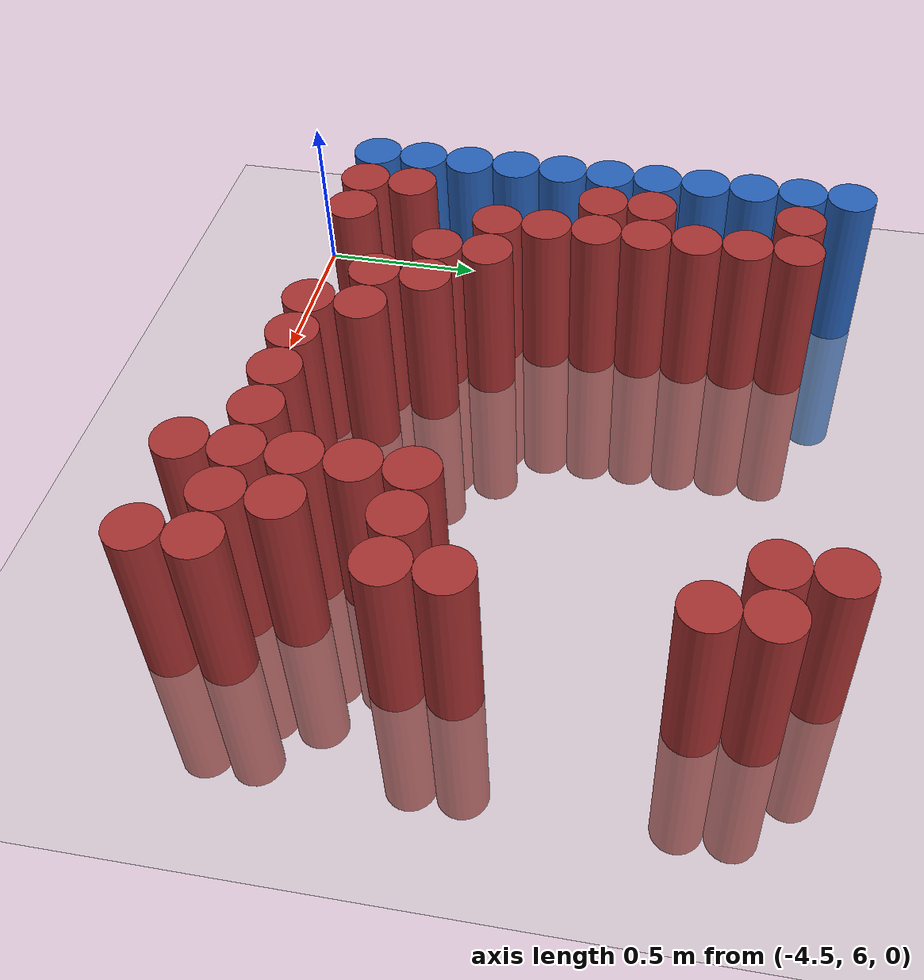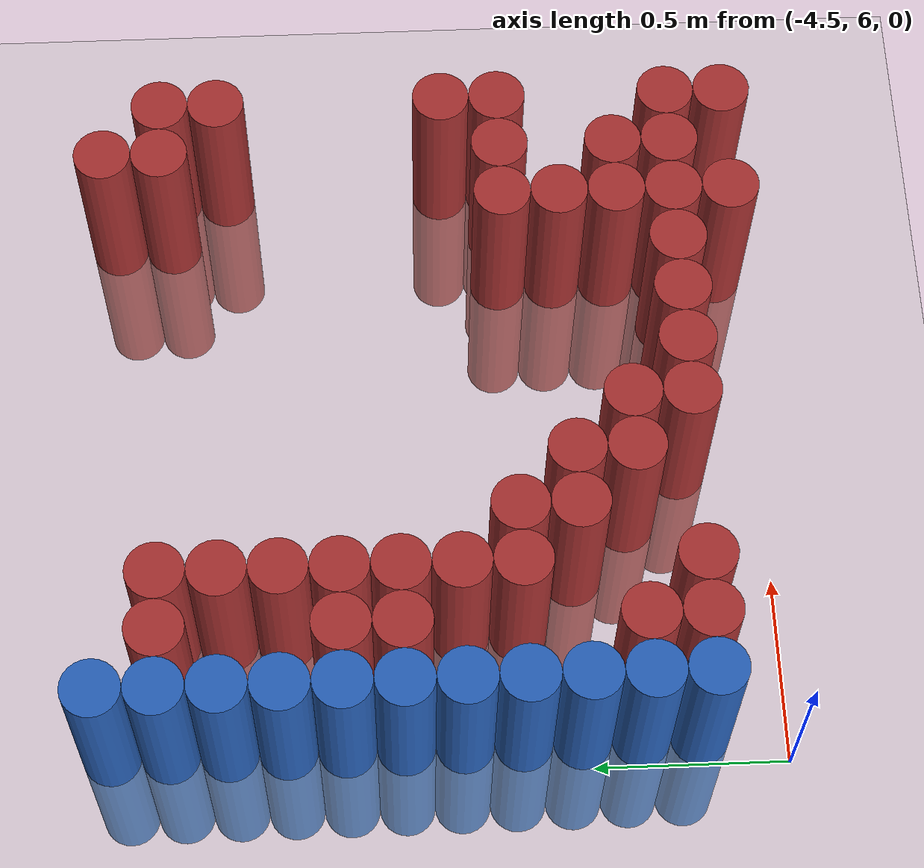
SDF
<sdf version="1.6">
 <world name="default">
  <model name="ground_plane">
   <static>1</static>
   <link name="link">
    <collision name="collision">
     <geometry><plane><normal>0 0 1</normal><size>100 100</size></plane></geometry>
     <surface><friction><ode><mu>100</mu><mu2>50</mu2></ode></friction></surface>
    </collision>
    <visual name="visual">
     <cast_shadows>0</cast_shadows>
     <geometry><plane><normal>0 0 1</normal><size>100 100</size></plane></geometry>
     <material>
      <script><uri>file://media/materials/scripts/gazebo.material</uri><name>Gazebo/Grey</name></script>
     </material>
    </visual>
   </link>
  </model>
  <model name="unit_cylinder_103">
   <static>1</static>
   <pose>-4.425000 6.225000 0.000000 0.000000 0.000000 0.000000</pose>
   <link name="link">
    <inertial>
     <mass>1</mass>
     <inertia><ixx>0.145833</ixx><ixy>0</ixy><ixz>0</ixz><iyy>0.145833</iyy><iyz>0</iyz><izz>0.125</izz></inertia>
    </inertial>
    <collision name="collision">
     <geometry><cylinder><radius>0.075000</radius><length>1</length></cylinder></geometry>
    </collision>
    <visual name="visual">
     <geometry><cylinder><radius>0.075000</radius><length>1</length></cylinder></geometry>
     <material>
      <ambient>0.152000 0.379000 0.720000 1</ambient>
      <diffuse>0.152000 0.379000 0.720000 1</diffuse>
     </material>
     <material>
      <script><name>Gazebo/Grey</name><uri>file://media/materials/scripts/gazebo.material</uri></script>
     </material>
    </visual>
   </link>
  </model>
  <model name="unit_cylinder_104">
   <static>1</static>
   <pose>-4.425000 6.375000 0.000000 0.000000 0.000000 0.000000</pose>
   <link name="link">
    <inertial>
     <mass>1</mass>
     <inertia><ixx>0.145833</ixx><ixy>0</ixy><ixz>0</ixz><iyy>0.145833</iyy><iyz>0</iyz><izz>0.125</izz></inertia>
    </inertial>
    <collision name="collision">
     <geometry><cylinder><radius>0.075000</radius><length>1</length></cylinder></geometry>
    </collision>
    <visual name="visual">
     <geometry><cylinder><radius>0.075000</radius><length>1</length></cylinder></geometry>
     <material>
      <ambient>0.152000 0.379000 0.720000 1</ambient>
      <diffuse>0.152000 0.379000 0.720000 1</diffuse>
     </material>
     <material>
      <script><name>Gazebo/Grey</name><uri>file://media/materials/scripts/gazebo.material</uri></script>
     </material>
    </visual>
   </link>
  </model>
  <model name="unit_cylinder_105">
   <static>1</static>
   <pose>-4.425000 6.525000 0.000000 0.000000 0.000000 0.000000</pose>
   <link name="link">
    <inertial>
     <mass>1</mass>
     <inertia><ixx>0.145833</ixx><ixy>0</ixy><ixz>0</ixz><iyy>0.145833</iyy><iyz>0</iyz><izz>0.125</izz></inertia>
    </inertial>
    <collision name="collision">
     <geometry><cylinder><radius>0.075000</radius><length>1</length></cylinder></geometry>
    </collision>
    <visual name="visual">
     <geometry><cylinder><radius>0.075000</radius><length>1</length></cylinder></geometry>
     <material>
      <ambient>0.152000 0.379000 0.720000 1</ambient>
      <diffuse>0.152000 0.379000 0.720000 1</diffuse>
     </material>
     <material>
      <script><name>Gazebo/Grey</name><uri>file://media/materials/scripts/gazebo.material</uri></script>
     </material>
    </visual>
   </link>
  </model>
  <model name="unit_cylinder_106">
   <static>1</static>
   <pose>-4.425000 6.675000 0.000000 0.000000 0.000000 0.000000</pose>
   <link name="link">
    <inertial>
     <mass>1</mass>
     <inertia><ixx>0.145833</ixx><ixy>0</ixy><ixz>0</ixz><iyy>0.145833</iyy><iyz>0</iyz><izz>0.125</izz></inertia>
    </inertial>
    <collision name="collision">
     <geometry><cylinder><radius>0.075000</radius><length>1</length></cylinder></geometry>
    </collision>
    <visual name="visual">
     <geometry><cylinder><radius>0.075000</radius><length>1</length></cylinder></geometry>
     <material>
      <ambient>0.152000 0.379000 0.720000 1</ambient>
      <diffuse>0.152000 0.379000 0.720000 1</diffuse>
     </material>
     <material>
      <script><name>Gazebo/Grey</name><uri>file://media/materials/scripts/gazebo.material</uri></script>
     </material>
    </visual>
   </link>
  </model>
  <model name="unit_cylinder_107">
   <static>1</static>
   <pose>-4.425000 6.825000 0.000000 0.000000 0.000000 0.000000</pose>
   <link name="link">
    <inertial>
     <mass>1</mass>
     <inertia><ixx>0.145833</ixx><ixy>0</ixy><ixz>0</ixz><iyy>0.145833</iyy><iyz>0</iyz><izz>0.125</izz></inertia>
    </inertial>
    <collision name="collision">
     <geometry><cylinder><radius>0.075000</radius><length>1</length></cylinder></geometry>
    </collision>
    <visual name="visual">
     <geometry><cylinder><radius>0.075000</radius><length>1</length></cylinder></geometry>
     <material>
      <ambient>0.152000 0.379000 0.720000 1</ambient>
      <diffuse>0.152000 0.379000 0.720000 1</diffuse>
     </material>
     <material>
      <script><name>Gazebo/Grey</name><uri>file://media/materials/scripts/gazebo.material</uri></script>
     </material>
    </visual>
   </link>
  </model>
  <model name="unit_cylinder_108">
   <static>1</static>
   <pose>-4.425000 6.975000 0.000000 0.000000 0.000000 0.000000</pose>
   <link name="link">
    <inertial>
     <mass>1</mass>
     <inertia><ixx>0.145833</ixx><ixy>0</ixy><ixz>0</ixz><iyy>0.145833</iyy><iyz>0</iyz><izz>0.125</izz></inertia>
    </inertial>
    <collision name="collision">
     <geometry><cylinder><radius>0.075000</radius><length>1</length></cylinder></geometry>
    </collision>
    <visual name="visual">
     <geometry><cylinder><radius>0.075000</radius><length>1</length></cylinder></geometry>
     <material>
      <ambient>0.152000 0.379000 0.720000 1</ambient>
      <diffuse>0.152000 0.379000 0.720000 1</diffuse>
     </material>
     <material>
      <script><name>Gazebo/Grey</name><uri>file://media/materials/scripts/gazebo.material</uri></script>
     </material>
    </visual>
   </link>
  </model>
  <model name="unit_cylinder_109">
   <static>1</static>
   <pose>-4.425000 7.125000 0.000000 0.000000 0.000000 0.000000</pose>
   <link name="link">
    <inertial>
     <mass>1</mass>
     <inertia><ixx>0.145833</ixx><ixy>0</ixy><ixz>0</ixz><iyy>0.145833</iyy><iyz>0</iyz><izz>0.125</izz></inertia>
    </inertial>
    <collision name="collision">
     <geometry><cylinder><radius>0.075000</radius><length>1</length></cylinder></geometry>
    </collision>
    <visual name="visual">
     <geometry><cylinder><radius>0.075000</radius><length>1</length></cylinder></geometry>
     <material>
      <ambient>0.152000 0.379000 0.720000 1</ambient>
      <diffuse>0.152000 0.379000 0.720000 1</diffuse>
     </material>
     <material>
      <script><name>Gazebo/Grey</name><uri>file://media/materials/scripts/gazebo.material</uri></script>
     </material>
    </visual>
   </link>
  </model>
  <model name="unit_cylinder_110">
   <static>1</static>
   <pose>-4.425000 7.275000 0.000000 0.000000 0.000000 0.000000</pose>
   <link name="link">
    <inertial>
     <mass>1</mass>
     <inertia><ixx>0.145833</ixx><ixy>0</ixy><ixz>0</ixz><iyy>0.145833</iyy><iyz>0</iyz><izz>0.125</izz></inertia>
    </inertial>
    <collision name="collision">
     <geometry><cylinder><radius>0.075000</radius><length>1</length></cylinder></geometry>
    </collision>
    <visual name="visual">
     <geometry><cylinder><radius>0.075000</radius><length>1</length></cylinder></geometry>
     <material>
      <ambient>0.152000 0.379000 0.720000 1</ambient>
      <diffuse>0.152000 0.379000 0.720000 1</diffuse>
     </material>
     <material>
      <script><name>Gazebo/Grey</name><uri>file://media/materials/scripts/gazebo.material</uri></script>
     </material>
    </visual>
   </link>
  </model>
  <model name="unit_cylinder_111">
   <static>1</static>
   <pose>-4.425000 7.425000 0.000000 0.000000 0.000000 0.000000</pose>
   <link name="link">
    <inertial>
     <mass>1</mass>
     <inertia><ixx>0.145833</ixx><ixy>0</ixy><ixz>0</ixz><iyy>0.145833</iyy><iyz>0</iyz><izz>0.125</izz></inertia>
    </inertial>
    <collision name="collision">
     <geometry><cylinder><radius>0.075000</radius><length>1</length></cylinder></geometry>
    </collision>
    <visual name="visual">
     <geometry><cylinder><radius>0.075000</radius><length>1</length></cylinder></geometry>
     <material>
      <ambient>0.152000 0.379000 0.720000 1</ambient>
      <diffuse>0.152000 0.379000 0.720000 1</diffuse>
     </material>
     <material>
      <script><name>Gazebo/Grey</name><uri>file://media/materials/scripts/gazebo.material</uri></script>
     </material>
    </visual>
   </link>
  </model>
  <model name="unit_cylinder_112">
   <static>1</static>
   <pose>-4.425000 7.575000 0.000000 0.000000 0.000000 0.000000</pose>
   <link name="link">
    <inertial>
     <mass>1</mass>
     <inertia><ixx>0.145833</ixx><ixy>0</ixy><ixz>0</ixz><iyy>0.145833</iyy><iyz>0</iyz><izz>0.125</izz></inertia>
    </inertial>
    <collision name="collision">
     <geometry><cylinder><radius>0.075000</radius><length>1</length></cylinder></geometry>
    </collision>
    <visual name="visual">
     <geometry><cylinder><radius>0.075000</radius><length>1</length></cylinder></geometry>
     <material>
      <ambient>0.152000 0.379000 0.720000 1</ambient>
      <diffuse>0.152000 0.379000 0.720000 1</diffuse>
     </material>
     <material>
      <script><name>Gazebo/Grey</name><uri>file://media/materials/scripts/gazebo.material</uri></script>
     </material>
    </visual>
   </link>
  </model>
  <model name="unit_cylinder_113">
   <static>1</static>
   <pose>-4.425000 7.725000 0.000000 0.000000 0.000000 0.000000</pose>
   <link name="link">
    <inertial>
     <mass>1</mass>
     <inertia><ixx>0.145833</ixx><ixy>0</ixy><ixz>0</ixz><iyy>0.145833</iyy><iyz>0</iyz><izz>0.125</izz></inertia>
    </inertial>
    <collision name="collision">
     <geometry><cylinder><radius>0.075000</radius><length>1</length></cylinder></geometry>
    </collision>
    <visual name="visual">
     <geometry><cylinder><radius>0.075000</radius><length>1</length></cylinder></geometry>
     <material>
      <ambient>0.152000 0.379000 0.720000 1</ambient>
      <diffuse>0.152000 0.379000 0.720000 1</diffuse>
     </material>
     <material>
      <script><name>Gazebo/Grey</name><uri>file://media/materials/scripts/gazebo.material</uri></script>
     </material>
    </visual>
   </link>
  </model>
  <model name="unit_cylinder_128">
   <static>1</static>
   <pose>-4.275000 6.225000 0.000000 0.000000 0.000000 0.000000</pose>
   <link name="link">
    <inertial>
     <mass>1</mass>
     <inertia><ixx>0.145833</ixx><ixy>0</ixy><ixz>0</ixz><iyy>0.145833</iyy><iyz>0</iyz><izz>0.125</izz></inertia>
    </inertial>
    <collision name="collision">
     <geometry><cylinder><radius>0.075000</radius><length>1</length></cylinder></geometry>
    </collision>
    <visual name="visual">
     <geometry><cylinder><radius>0.075000</radius><length>1</length></cylinder></geometry>
     <material>
      <ambient>0.648000 0.192000 0.192000 1</ambient>
      <diffuse>0.648000 0.192000 0.192000 1</diffuse>
     </material>
     <material>
      <script><name>Gazebo/Grey</name><uri>file://media/materials/scripts/gazebo.material</uri></script>
     </material>
    </visual>
   </link>
  </model>
  <model name="unit_cylinder_129">
   <static>1</static>
   <pose>-4.275000 6.375000 0.000000 0.000000 0.000000 0.000000</pose>
   <link name="link">
    <inertial>
     <mass>1</mass>
     <inertia><ixx>0.145833</ixx><ixy>0</ixy><ixz>0</ixz><iyy>0.145833</iyy><iyz>0</iyz><izz>0.125</izz></inertia>
    </inertial>
    <collision name="collision">
     <geometry><cylinder><radius>0.075000</radius><length>1</length></cylinder></geometry>
    </collision>
    <visual name="visual">
     <geometry><cylinder><radius>0.075000</radius><length>1</length></cylinder></geometry>
     <material>
      <ambient>0.648000 0.192000 0.192000 1</ambient>
      <diffuse>0.648000 0.192000 0.192000 1</diffuse>
     </material>
     <material>
      <script><name>Gazebo/Grey</name><uri>file://media/materials/scripts/gazebo.material</uri></script>
     </material>
    </visual>
   </link>
  </model>
  <model name="unit_cylinder_130">
   <static>1</static>
   <pose>-4.275000 6.975000 0.000000 0.000000 0.000000 0.000000</pose>
   <link name="link">
    <inertial>
     <mass>1</mass>
     <inertia><ixx>0.145833</ixx><ixy>0</ixy><ixz>0</ixz><iyy>0.145833</iyy><iyz>0</iyz><izz>0.125</izz></inertia>
    </inertial>
    <collision name="collision">
     <geometry><cylinder><radius>0.075000</radius><length>1</length></cylinder></geometry>
    </collision>
    <visual name="visual">
     <geometry><cylinder><radius>0.075000</radius><length>1</length></cylinder></geometry>
     <material>
      <ambient>0.648000 0.192000 0.192000 1</ambient>
      <diffuse>0.648000 0.192000 0.192000 1</diffuse>
     </material>
     <material>
      <script><name>Gazebo/Grey</name><uri>file://media/materials/scripts/gazebo.material</uri></script>
     </material>
    </visual>
   </link>
  </model>
  <model name="unit_cylinder_131">
   <static>1</static>
   <pose>-4.275000 7.125000 0.000000 0.000000 0.000000 0.000000</pose>
   <link name="link">
    <inertial>
     <mass>1</mass>
     <inertia><ixx>0.145833</ixx><ixy>0</ixy><ixz>0</ixz><iyy>0.145833</iyy><iyz>0</iyz><izz>0.125</izz></inertia>
    </inertial>
    <collision name="collision">
     <geometry><cylinder><radius>0.075000</radius><length>1</length></cylinder></geometry>
    </collision>
    <visual name="visual">
     <geometry><cylinder><radius>0.075000</radius><length>1</length></cylinder></geometry>
     <material>
      <ambient>0.648000 0.192000 0.192000 1</ambient>
      <diffuse>0.648000 0.192000 0.192000 1</diffuse>
     </material>
     <material>
      <script><name>Gazebo/Grey</name><uri>file://media/materials/scripts/gazebo.material</uri></script>
     </material>
    </visual>
   </link>
  </model>
  <model name="unit_cylinder_132">
   <static>1</static>
   <pose>-4.275000 7.575000 0.000000 0.000000 0.000000 0.000000</pose>
   <link name="link">
    <inertial>
     <mass>1</mass>
     <inertia><ixx>0.145833</ixx><ixy>0</ixy><ixz>0</ixz><iyy>0.145833</iyy><iyz>0</iyz><izz>0.125</izz></inertia>
    </inertial>
    <collision name="collision">
     <geometry><cylinder><radius>0.075000</radius><length>1</length></cylinder></geometry>
    </collision>
    <visual name="visual">
     <geometry><cylinder><radius>0.075000</radius><length>1</length></cylinder></geometry>
     <material>
      <ambient>0.648000 0.192000 0.192000 1</ambient>
      <diffuse>0.648000 0.192000 0.192000 1</diffuse>
     </material>
     <material>
      <script><name>Gazebo/Grey</name><uri>file://media/materials/scripts/gazebo.material</uri></script>
     </material>
    </visual>
   </link>
  </model>
  <model name="unit_cylinder_137">
   <static>1</static>
   <pose>-4.125000 6.225000 0.000000 0.000000 0.000000 0.000000</pose>
   <link name="link">
    <inertial>
     <mass>1</mass>
     <inertia><ixx>0.145833</ixx><ixy>0</ixy><ixz>0</ixz><iyy>0.145833</iyy><iyz>0</iyz><izz>0.125</izz></inertia>
    </inertial>
    <collision name="collision">
     <geometry><cylinder><radius>0.075000</radius><length>1</length></cylinder></geometry>
    </collision>
    <visual name="visual">
     <geometry><cylinder><radius>0.075000</radius><length>1</length></cylinder></geometry>
     <material>
      <ambient>0.648000 0.192000 0.192000 1</ambient>
      <diffuse>0.648000 0.192000 0.192000 1</diffuse>
     </material>
     <material>
      <script><name>Gazebo/Grey</name><uri>file://media/materials/scripts/gazebo.material</uri></script>
     </material>
    </visual>
   </link>
  </model>
  <model name="unit_cylinder_138">
   <static>1</static>
   <pose>-4.125000 6.675000 0.000000 0.000000 0.000000 0.000000</pose>
   <link name="link">
    <inertial>
     <mass>1</mass>
     <inertia><ixx>0.145833</ixx><ixy>0</ixy><ixz>0</ixz><iyy>0.145833</iyy><iyz>0</iyz><izz>0.125</izz></inertia>
    </inertial>
    <collision name="collision">
     <geometry><cylinder><radius>0.075000</radius><length>1</length></cylinder></geometry>
    </collision>
    <visual name="visual">
     <geometry><cylinder><radius>0.075000</radius><length>1</length></cylinder></geometry>
     <material>
      <ambient>0.648000 0.192000 0.192000 1</ambient>
      <diffuse>0.648000 0.192000 0.192000 1</diffuse>
     </material>
     <material>
      <script><name>Gazebo/Grey</name><uri>file://media/materials/scripts/gazebo.material</uri></script>
     </material>
    </visual>
   </link>
  </model>
  <model name="unit_cylinder_139">
   <static>1</static>
   <pose>-4.125000 6.825000 0.000000 0.000000 0.000000 0.000000</pose>
   <link name="link">
    <inertial>
     <mass>1</mass>
     <inertia><ixx>0.145833</ixx><ixy>0</ixy><ixz>0</ixz><iyy>0.145833</iyy><iyz>0</iyz><izz>0.125</izz></inertia>
    </inertial>
    <collision name="collision">
     <geometry><cylinder><radius>0.075000</radius><length>1</length></cylinder></geometry>
    </collision>
    <visual name="visual">
     <geometry><cylinder><radius>0.075000</radius><length>1</length></cylinder></geometry>
     <material>
      <ambient>0.648000 0.192000 0.192000 1</ambient>
      <diffuse>0.648000 0.192000 0.192000 1</diffuse>
     </material>
     <material>
      <script><name>Gazebo/Grey</name><uri>file://media/materials/scripts/gazebo.material</uri></script>
     </material>
    </visual>
   </link>
  </model>
  <model name="unit_cylinder_140">
   <static>1</static>
   <pose>-4.125000 6.975000 0.000000 0.000000 0.000000 0.000000</pose>
   <link name="link">
    <inertial>
     <mass>1</mass>
     <inertia><ixx>0.145833</ixx><ixy>0</ixy><ixz>0</ixz><iyy>0.145833</iyy><iyz>0</iyz><izz>0.125</izz></inertia>
    </inertial>
    <collision name="collision">
     <geometry><cylinder><radius>0.075000</radius><length>1</length></cylinder></geometry>
    </collision>
    <visual name="visual">
     <geometry><cylinder><radius>0.075000</radius><length>1</length></cylinder></geometry>
     <material>
      <ambient>0.648000 0.192000 0.192000 1</ambient>
      <diffuse>0.648000 0.192000 0.192000 1</diffuse>
     </material>
     <material>
      <script><name>Gazebo/Grey</name><uri>file://media/materials/scripts/gazebo.material</uri></script>
     </material>
    </visual>
   </link>
  </model>
  <model name="unit_cylinder_141">
   <static>1</static>
   <pose>-4.125000 7.125000 0.000000 0.000000 0.000000 0.000000</pose>
   <link name="link">
    <inertial>
     <mass>1</mass>
     <inertia><ixx>0.145833</ixx><ixy>0</ixy><ixz>0</ixz><iyy>0.145833</iyy><iyz>0</iyz><izz>0.125</izz></inertia>
    </inertial>
    <collision name="collision">
     <geometry><cylinder><radius>0.075000</radius><length>1</length></cylinder></geometry>
    </collision>
    <visual name="visual">
     <geometry><cylinder><radius>0.075000</radius><length>1</length></cylinder></geometry>
     <material>
      <ambient>0.648000 0.192000 0.192000 1</ambient>
      <diffuse>0.648000 0.192000 0.192000 1</diffuse>
     </material>
     <material>
      <script><name>Gazebo/Grey</name><uri>file://media/materials/scripts/gazebo.material</uri></script>
     </material>
    </visual>
   </link>
  </model>
  <model name="unit_cylinder_142">
   <static>1</static>
   <pose>-4.125000 7.275000 0.000000 0.000000 0.000000 0.000000</pose>
   <link name="link">
    <inertial>
     <mass>1</mass>
     <inertia><ixx>0.145833</ixx><ixy>0</ixy><ixz>0</ixz><iyy>0.145833</iyy><iyz>0</iyz><izz>0.125</izz></inertia>
    </inertial>
    <collision name="collision">
     <geometry><cylinder><radius>0.075000</radius><length>1</length></cylinder></geometry>
    </collision>
    <visual name="visual">
     <geometry><cylinder><radius>0.075000</radius><length>1</length></cylinder></geometry>
     <material>
      <ambient>0.648000 0.192000 0.192000 1</ambient>
      <diffuse>0.648000 0.192000 0.192000 1</diffuse>
     </material>
     <material>
      <script><name>Gazebo/Grey</name><uri>file://media/materials/scripts/gazebo.material</uri></script>
     </material>
    </visual>
   </link>
  </model>
  <model name="unit_cylinder_143">
   <static>1</static>
   <pose>-4.125000 7.425000 0.000000 0.000000 0.000000 0.000000</pose>
   <link name="link">
    <inertial>
     <mass>1</mass>
     <inertia><ixx>0.145833</ixx><ixy>0</ixy><ixz>0</ixz><iyy>0.145833</iyy><iyz>0</iyz><izz>0.125</izz></inertia>
    </inertial>
    <collision name="collision">
     <geometry><cylinder><radius>0.075000</radius><length>1</length></cylinder></geometry>
    </collision>
    <visual name="visual">
     <geometry><cylinder><radius>0.075000</radius><length>1</length></cylinder></geometry>
     <material>
      <ambient>0.648000 0.192000 0.192000 1</ambient>
      <diffuse>0.648000 0.192000 0.192000 1</diffuse>
     </material>
     <material>
      <script><name>Gazebo/Grey</name><uri>file://media/materials/scripts/gazebo.material</uri></script>
     </material>
    </visual>
   </link>
  </model>
  <model name="unit_cylinder_144">
   <static>1</static>
   <pose>-4.125000 7.575000 0.000000 0.000000 0.000000 0.000000</pose>
   <link name="link">
    <inertial>
     <mass>1</mass>
     <inertia><ixx>0.145833</ixx><ixy>0</ixy><ixz>0</ixz><iyy>0.145833</iyy><iyz>0</iyz><izz>0.125</izz></inertia>
    </inertial>
    <collision name="collision">
     <geometry><cylinder><radius>0.075000</radius><length>1</length></cylinder></geometry>
    </collision>
    <visual name="visual">
     <geometry><cylinder><radius>0.075000</radius><length>1</length></cylinder></geometry>
     <material>
      <ambient>0.648000 0.192000 0.192000 1</ambient>
      <diffuse>0.648000 0.192000 0.192000 1</diffuse>
     </material>
     <material>
      <script><name>Gazebo/Grey</name><uri>file://media/materials/scripts/gazebo.material</uri></script>
     </material>
    </visual>
   </link>
  </model>
  <model name="unit_cylinder_150">
   <static>1</static>
   <pose>-3.975000 6.525000 0.000000 0.000000 0.000000 0.000000</pose>
   <link name="link">
    <inertial>
     <mass>1</mass>
     <inertia><ixx>0.145833</ixx><ixy>0</ixy><ixz>0</ixz><iyy>0.145833</iyy><iyz>0</iyz><izz>0.125</izz></inertia>
    </inertial>
    <collision name="collision">
     <geometry><cylinder><radius>0.075000</radius><length>1</length></cylinder></geometry>
    </collision>
    <visual name="visual">
     <geometry><cylinder><radius>0.075000</radius><length>1</length></cylinder></geometry>
     <material>
      <ambient>0.648000 0.192000 0.192000 1</ambient>
      <diffuse>0.648000 0.192000 0.192000 1</diffuse>
     </material>
     <material>
      <script><name>Gazebo/Grey</name><uri>file://media/materials/scripts/gazebo.material</uri></script>
     </material>
    </visual>
   </link>
  </model>
  <model name="unit_cylinder_151">
   <static>1</static>
   <pose>-3.975000 6.675000 0.000000 0.000000 0.000000 0.000000</pose>
   <link name="link">
    <inertial>
     <mass>1</mass>
     <inertia><ixx>0.145833</ixx><ixy>0</ixy><ixz>0</ixz><iyy>0.145833</iyy><iyz>0</iyz><izz>0.125</izz></inertia>
    </inertial>
    <collision name="collision">
     <geometry><cylinder><radius>0.075000</radius><length>1</length></cylinder></geometry>
    </collision>
    <visual name="visual">
     <geometry><cylinder><radius>0.075000</radius><length>1</length></cylinder></geometry>
     <material>
      <ambient>0.648000 0.192000 0.192000 1</ambient>
      <diffuse>0.648000 0.192000 0.192000 1</diffuse>
     </material>
     <material>
      <script><name>Gazebo/Grey</name><uri>file://media/materials/scripts/gazebo.material</uri></script>
     </material>
    </visual>
   </link>
  </model>
  <model name="unit_cylinder_156">
   <static>1</static>
   <pose>-3.825000 6.375000 0.000000 0.000000 0.000000 0.000000</pose>
   <link name="link">
    <inertial>
     <mass>1</mass>
     <inertia><ixx>0.145833</ixx><ixy>0</ixy><ixz>0</ixz><iyy>0.145833</iyy><iyz>0</iyz><izz>0.125</izz></inertia>
    </inertial>
    <collision name="collision">
     <geometry><cylinder><radius>0.075000</radius><length>1</length></cylinder></geometry>
    </collision>
    <visual name="visual">
     <geometry><cylinder><radius>0.075000</radius><length>1</length></cylinder></geometry>
     <material>
      <ambient>0.648000 0.192000 0.192000 1</ambient>
      <diffuse>0.648000 0.192000 0.192000 1</diffuse>
     </material>
     <material>
      <script><name>Gazebo/Grey</name><uri>file://media/materials/scripts/gazebo.material</uri></script>
     </material>
    </visual>
   </link>
  </model>
  <model name="unit_cylinder_157">
   <static>1</static>
   <pose>-3.825000 6.525000 0.000000 0.000000 0.000000 0.000000</pose>
   <link name="link">
    <inertial>
     <mass>1</mass>
     <inertia><ixx>0.145833</ixx><ixy>0</ixy><ixz>0</ixz><iyy>0.145833</iyy><iyz>0</iyz><izz>0.125</izz></inertia>
    </inertial>
    <collision name="collision">
     <geometry><cylinder><radius>0.075000</radius><length>1</length></cylinder></geometry>
    </collision>
    <visual name="visual">
     <geometry><cylinder><radius>0.075000</radius><length>1</length></cylinder></geometry>
     <material>
      <ambient>0.648000 0.192000 0.192000 1</ambient>
      <diffuse>0.648000 0.192000 0.192000 1</diffuse>
     </material>
     <material>
      <script><name>Gazebo/Grey</name><uri>file://media/materials/scripts/gazebo.material</uri></script>
     </material>
    </visual>
   </link>
  </model>
  <model name="unit_cylinder_161">
   <static>1</static>
   <pose>-3.675000 6.225000 0.000000 0.000000 0.000000 0.000000</pose>
   <link name="link">
    <inertial>
     <mass>1</mass>
     <inertia><ixx>0.145833</ixx><ixy>0</ixy><ixz>0</ixz><iyy>0.145833</iyy><iyz>0</iyz><izz>0.125</izz></inertia>
    </inertial>
    <collision name="collision">
     <geometry><cylinder><radius>0.075000</radius><length>1</length></cylinder></geometry>
    </collision>
    <visual name="visual">
     <geometry><cylinder><radius>0.075000</radius><length>1</length></cylinder></geometry>
     <material>
      <ambient>0.648000 0.192000 0.192000 1</ambient>
      <diffuse>0.648000 0.192000 0.192000 1</diffuse>
     </material>
     <material>
      <script><name>Gazebo/Grey</name><uri>file://media/materials/scripts/gazebo.material</uri></script>
     </material>
    </visual>
   </link>
  </model>
  <model name="unit_cylinder_162">
   <static>1</static>
   <pose>-3.675000 6.375000 0.000000 0.000000 0.000000 0.000000</pose>
   <link name="link">
    <inertial>
     <mass>1</mass>
     <inertia><ixx>0.145833</ixx><ixy>0</ixy><ixz>0</ixz><iyy>0.145833</iyy><iyz>0</iyz><izz>0.125</izz></inertia>
    </inertial>
    <collision name="collision">
     <geometry><cylinder><radius>0.075000</radius><length>1</length></cylinder></geometry>
    </collision>
    <visual name="visual">
     <geometry><cylinder><radius>0.075000</radius><length>1</length></cylinder></geometry>
     <material>
      <ambient>0.648000 0.192000 0.192000 1</ambient>
      <diffuse>0.648000 0.192000 0.192000 1</diffuse>
     </material>
     <material>
      <script><name>Gazebo/Grey</name><uri>file://media/materials/scripts/gazebo.material</uri></script>
     </material>
    </visual>
   </link>
  </model>
  <model name="unit_cylinder_170">
   <static>1</static>
   <pose>-3.525000 6.225000 0.000000 0.000000 0.000000 0.000000</pose>
   <link name="link">
    <inertial>
     <mass>1</mass>
     <inertia><ixx>0.145833</ixx><ixy>0</ixy><ixz>0</ixz><iyy>0.145833</iyy><iyz>0</iyz><izz>0.125</izz></inertia>
    </inertial>
    <collision name="collision">
     <geometry><cylinder><radius>0.075000</radius><length>1</length></cylinder></geometry>
    </collision>
    <visual name="visual">
     <geometry><cylinder><radius>0.075000</radius><length>1</length></cylinder></geometry>
     <material>
      <ambient>0.648000 0.192000 0.192000 1</ambient>
      <diffuse>0.648000 0.192000 0.192000 1</diffuse>
     </material>
     <material>
      <script><name>Gazebo/Grey</name><uri>file://media/materials/scripts/gazebo.material</uri></script>
     </material>
    </visual>
   </link>
  </model>
  <model name="unit_cylinder_177">
   <static>1</static>
   <pose>-3.375000 6.225000 0.000000 0.000000 0.000000 0.000000</pose>
   <link name="link">
    <inertial>
     <mass>1</mass>
     <inertia><ixx>0.145833</ixx><ixy>0</ixy><ixz>0</ixz><iyy>0.145833</iyy><iyz>0</iyz><izz>0.125</izz></inertia>
    </inertial>
    <collision name="collision">
     <geometry><cylinder><radius>0.075000</radius><length>1</length></cylinder></geometry>
    </collision>
    <visual name="visual">
     <geometry><cylinder><radius>0.075000</radius><length>1</length></cylinder></geometry>
     <material>
      <ambient>0.648000 0.192000 0.192000 1</ambient>
      <diffuse>0.648000 0.192000 0.192000 1</diffuse>
     </material>
     <material>
      <script><name>Gazebo/Grey</name><uri>file://media/materials/scripts/gazebo.material</uri></script>
     </material>
    </visual>
   </link>
  </model>
  <model name="unit_cylinder_182">
   <static>1</static>
   <pose>-3.225000 6.225000 0.000000 0.000000 0.000000 0.000000</pose>
   <link name="link">
    <inertial>
     <mass>1</mass>
     <inertia><ixx>0.145833</ixx><ixy>0</ixy><ixz>0</ixz><iyy>0.145833</iyy><iyz>0</iyz><izz>0.125</izz></inertia>
    </inertial>
    <collision name="collision">
     <geometry><cylinder><radius>0.075000</radius><length>1</length></cylinder></geometry>
    </collision>
    <visual name="visual">
     <geometry><cylinder><radius>0.075000</radius><length>1</length></cylinder></geometry>
     <material>
      <ambient>0.648000 0.192000 0.192000 1</ambient>
      <diffuse>0.648000 0.192000 0.192000 1</diffuse>
     </material>
     <material>
      <script><name>Gazebo/Grey</name><uri>file://media/materials/scripts/gazebo.material</uri></script>
     </material>
    </visual>
   </link>
  </model>
  <model name="unit_cylinder_188">
   <static>1</static>
   <pose>-3.075000 6.075000 0.000000 0.000000 0.000000 0.000000</pose>
   <link name="link">
    <inertial>
     <mass>1</mass>
     <inertia><ixx>0.145833</ixx><ixy>0</ixy><ixz>0</ixz><iyy>0.145833</iyy><iyz>0</iyz><izz>0.125</izz></inertia>
    </inertial>
    <collision name="collision">
     <geometry><cylinder><radius>0.075000</radius><length>1</length></cylinder></geometry>
    </collision>
    <visual name="visual">
     <geometry><cylinder><radius>0.075000</radius><length>1</length></cylinder></geometry>
     <material>
      <ambient>0.648000 0.192000 0.192000 1</ambient>
      <diffuse>0.648000 0.192000 0.192000 1</diffuse>
     </material>
     <material>
      <script><name>Gazebo/Grey</name><uri>file://media/materials/scripts/gazebo.material</uri></script>
     </material>
    </visual>
   </link>
  </model>
  <model name="unit_cylinder_189">
   <static>1</static>
   <pose>-3.075000 6.225000 0.000000 0.000000 0.000000 0.000000</pose>
   <link name="link">
    <inertial>
     <mass>1</mass>
     <inertia><ixx>0.145833</ixx><ixy>0</ixy><ixz>0</ixz><iyy>0.145833</iyy><iyz>0</iyz><izz>0.125</izz></inertia>
    </inertial>
    <collision name="collision">
     <geometry><cylinder><radius>0.075000</radius><length>1</length></cylinder></geometry>
    </collision>
    <visual name="visual">
     <geometry><cylinder><radius>0.075000</radius><length>1</length></cylinder></geometry>
     <material>
      <ambient>0.648000 0.192000 0.192000 1</ambient>
      <diffuse>0.648000 0.192000 0.192000 1</diffuse>
     </material>
     <material>
      <script><name>Gazebo/Grey</name><uri>file://media/materials/scripts/gazebo.material</uri></script>
     </material>
    </visual>
   </link>
  </model>
  <model name="unit_cylinder_190">
   <static>1</static>
   <pose>-3.075000 6.375000 0.000000 0.000000 0.000000 0.000000</pose>
   <link name="link">
    <inertial>
     <mass>1</mass>
     <inertia><ixx>0.145833</ixx><ixy>0</ixy><ixz>0</ixz><iyy>0.145833</iyy><iyz>0</iyz><izz>0.125</izz></inertia>
    </inertial>
    <collision name="collision">
     <geometry><cylinder><radius>0.075000</radius><length>1</length></cylinder></geometry>
    </collision>
    <visual name="visual">
     <geometry><cylinder><radius>0.075000</radius><length>1</length></cylinder></geometry>
     <material>
      <ambient>0.648000 0.192000 0.192000 1</ambient>
      <diffuse>0.648000 0.192000 0.192000 1</diffuse>
     </material>
     <material>
      <script><name>Gazebo/Grey</name><uri>file://media/materials/scripts/gazebo.material</uri></script>
     </material>
    </visual>
   </link>
  </model>
  <model name="unit_cylinder_191">
   <static>1</static>
   <pose>-3.075000 6.525000 0.000000 0.000000 0.000000 0.000000</pose>
   <link name="link">
    <inertial>
     <mass>1</mass>
     <inertia><ixx>0.145833</ixx><ixy>0</ixy><ixz>0</ixz><iyy>0.145833</iyy><iyz>0</iyz><izz>0.125</izz></inertia>
    </inertial>
    <collision name="collision">
     <geometry><cylinder><radius>0.075000</radius><length>1</length></cylinder></geometry>
    </collision>
    <visual name="visual">
     <geometry><cylinder><radius>0.075000</radius><length>1</length></cylinder></geometry>
     <material>
      <ambient>0.648000 0.192000 0.192000 1</ambient>
      <diffuse>0.648000 0.192000 0.192000 1</diffuse>
     </material>
     <material>
      <script><name>Gazebo/Grey</name><uri>file://media/materials/scripts/gazebo.material</uri></script>
     </material>
    </visual>
   </link>
  </model>
  <model name="unit_cylinder_192">
   <static>1</static>
   <pose>-3.075000 6.675000 0.000000 0.000000 0.000000 0.000000</pose>
   <link name="link">
    <inertial>
     <mass>1</mass>
     <inertia><ixx>0.145833</ixx><ixy>0</ixy><ixz>0</ixz><iyy>0.145833</iyy><iyz>0</iyz><izz>0.125</izz></inertia>
    </inertial>
    <collision name="collision">
     <geometry><cylinder><radius>0.075000</radius><length>1</length></cylinder></geometry>
    </collision>
    <visual name="visual">
     <geometry><cylinder><radius>0.075000</radius><length>1</length></cylinder></geometry>
     <material>
      <ambient>0.648000 0.192000 0.192000 1</ambient>
      <diffuse>0.648000 0.192000 0.192000 1</diffuse>
     </material>
     <material>
      <script><name>Gazebo/Grey</name><uri>file://media/materials/scripts/gazebo.material</uri></script>
     </material>
    </visual>
   </link>
  </model>
  <model name="unit_cylinder_202">
   <static>1</static>
   <pose>-2.925000 6.225000 0.000000 0.000000 0.000000 0.000000</pose>
   <link name="link">
    <inertial>
     <mass>1</mass>
     <inertia><ixx>0.145833</ixx><ixy>0</ixy><ixz>0</ixz><iyy>0.145833</iyy><iyz>0</iyz><izz>0.125</izz></inertia>
    </inertial>
    <collision name="collision">
     <geometry><cylinder><radius>0.075000</radius><length>1</length></cylinder></geometry>
    </collision>
    <visual name="visual">
     <geometry><cylinder><radius>0.075000</radius><length>1</length></cylinder></geometry>
     <material>
      <ambient>0.648000 0.192000 0.192000 1</ambient>
      <diffuse>0.648000 0.192000 0.192000 1</diffuse>
     </material>
     <material>
      <script><name>Gazebo/Grey</name><uri>file://media/materials/scripts/gazebo.material</uri></script>
     </material>
    </visual>
   </link>
  </model>
  <model name="unit_cylinder_203">
   <static>1</static>
   <pose>-2.925000 6.375000 0.000000 0.000000 0.000000 0.000000</pose>
   <link name="link">
    <inertial>
     <mass>1</mass>
     <inertia><ixx>0.145833</ixx><ixy>0</ixy><ixz>0</ixz><iyy>0.145833</iyy><iyz>0</iyz><izz>0.125</izz></inertia>
    </inertial>
    <collision name="collision">
     <geometry><cylinder><radius>0.075000</radius><length>1</length></cylinder></geometry>
    </collision>
    <visual name="visual">
     <geometry><cylinder><radius>0.075000</radius><length>1</length></cylinder></geometry>
     <material>
      <ambient>0.648000 0.192000 0.192000 1</ambient>
      <diffuse>0.648000 0.192000 0.192000 1</diffuse>
     </material>
     <material>
      <script><name>Gazebo/Grey</name><uri>file://media/materials/scripts/gazebo.material</uri></script>
     </material>
    </visual>
   </link>
  </model>
  <model name="unit_cylinder_204">
   <static>1</static>
   <pose>-2.925000 6.675000 0.000000 0.000000 0.000000 0.000000</pose>
   <link name="link">
    <inertial>
     <mass>1</mass>
     <inertia><ixx>0.145833</ixx><ixy>0</ixy><ixz>0</ixz><iyy>0.145833</iyy><iyz>0</iyz><izz>0.125</izz></inertia>
    </inertial>
    <collision name="collision">
     <geometry><cylinder><radius>0.075000</radius><length>1</length></cylinder></geometry>
    </collision>
    <visual name="visual">
     <geometry><cylinder><radius>0.075000</radius><length>1</length></cylinder></geometry>
     <material>
      <ambient>0.648000 0.192000 0.192000 1</ambient>
      <diffuse>0.648000 0.192000 0.192000 1</diffuse>
     </material>
     <material>
      <script><name>Gazebo/Grey</name><uri>file://media/materials/scripts/gazebo.material</uri></script>
     </material>
    </visual>
   </link>
  </model>
  <model name="unit_cylinder_205">
   <static>1</static>
   <pose>-2.925000 7.575000 0.000000 0.000000 0.000000 0.000000</pose>
   <link name="link">
    <inertial>
     <mass>1</mass>
     <inertia><ixx>0.145833</ixx><ixy>0</ixy><ixz>0</ixz><iyy>0.145833</iyy><iyz>0</iyz><izz>0.125</izz></inertia>
    </inertial>
    <collision name="collision">
     <geometry><cylinder><radius>0.075000</radius><length>1</length></cylinder></geometry>
    </collision>
    <visual name="visual">
     <geometry><cylinder><radius>0.075000</radius><length>1</length></cylinder></geometry>
     <material>
      <ambient>0.648000 0.192000 0.192000 1</ambient>
      <diffuse>0.648000 0.192000 0.192000 1</diffuse>
     </material>
     <material>
      <script><name>Gazebo/Grey</name><uri>file://media/materials/scripts/gazebo.material</uri></script>
     </material>
    </visual>
   </link>
  </model>
  <model name="unit_cylinder_206">
   <static>1</static>
   <pose>-2.925000 7.725000 0.000000 0.000000 0.000000 0.000000</pose>
   <link name="link">
    <inertial>
     <mass>1</mass>
     <inertia><ixx>0.145833</ixx><ixy>0</ixy><ixz>0</ixz><iyy>0.145833</iyy><iyz>0</iyz><izz>0.125</izz></inertia>
    </inertial>
    <collision name="collision">
     <geometry><cylinder><radius>0.075000</radius><length>1</length></cylinder></geometry>
    </collision>
    <visual name="visual">
     <geometry><cylinder><radius>0.075000</radius><length>1</length></cylinder></geometry>
     <material>
      <ambient>0.648000 0.192000 0.192000 1</ambient>
      <diffuse>0.648000 0.192000 0.192000 1</diffuse>
     </material>
     <material>
      <script><name>Gazebo/Grey</name><uri>file://media/materials/scripts/gazebo.material</uri></script>
     </material>
    </visual>
   </link>
  </model>
  <model name="unit_cylinder_213">
   <static>1</static>
   <pose>-2.775000 6.075000 0.000000 0.000000 0.000000 0.000000</pose>
   <link name="link">
    <inertial>
     <mass>1</mass>
     <inertia><ixx>0.145833</ixx><ixy>0</ixy><ixz>0</ixz><iyy>0.145833</iyy><iyz>0</iyz><izz>0.125</izz></inertia>
    </inertial>
    <collision name="collision">
     <geometry><cylinder><radius>0.075000</radius><length>1</length></cylinder></geometry>
    </collision>
    <visual name="visual">
     <geometry><cylinder><radius>0.075000</radius><length>1</length></cylinder></geometry>
     <material>
      <ambient>0.648000 0.192000 0.192000 1</ambient>
      <diffuse>0.648000 0.192000 0.192000 1</diffuse>
     </material>
     <material>
      <script><name>Gazebo/Grey</name><uri>file://media/materials/scripts/gazebo.material</uri></script>
     </material>
    </visual>
   </link>
  </model>
  <model name="unit_cylinder_214">
   <static>1</static>
   <pose>-2.775000 6.225000 0.000000 0.000000 0.000000 0.000000</pose>
   <link name="link">
    <inertial>
     <mass>1</mass>
     <inertia><ixx>0.145833</ixx><ixy>0</ixy><ixz>0</ixz><iyy>0.145833</iyy><iyz>0</iyz><izz>0.125</izz></inertia>
    </inertial>
    <collision name="collision">
     <geometry><cylinder><radius>0.075000</radius><length>1</length></cylinder></geometry>
    </collision>
    <visual name="visual">
     <geometry><cylinder><radius>0.075000</radius><length>1</length></cylinder></geometry>
     <material>
      <ambient>0.648000 0.192000 0.192000 1</ambient>
      <diffuse>0.648000 0.192000 0.192000 1</diffuse>
     </material>
     <material>
      <script><name>Gazebo/Grey</name><uri>file://media/materials/scripts/gazebo.material</uri></script>
     </material>
    </visual>
   </link>
  </model>
  <model name="unit_cylinder_215">
   <static>1</static>
   <pose>-2.775000 6.675000 0.000000 0.000000 0.000000 0.000000</pose>
   <link name="link">
    <inertial>
     <mass>1</mass>
     <inertia><ixx>0.145833</ixx><ixy>0</ixy><ixz>0</ixz><iyy>0.145833</iyy><iyz>0</iyz><izz>0.125</izz></inertia>
    </inertial>
    <collision name="collision">
     <geometry><cylinder><radius>0.075000</radius><length>1</length></cylinder></geometry>
    </collision>
    <visual name="visual">
     <geometry><cylinder><radius>0.075000</radius><length>1</length></cylinder></geometry>
     <material>
      <ambient>0.648000 0.192000 0.192000 1</ambient>
      <diffuse>0.648000 0.192000 0.192000 1</diffuse>
     </material>
     <material>
      <script><name>Gazebo/Grey</name><uri>file://media/materials/scripts/gazebo.material</uri></script>
     </material>
    </visual>
   </link>
  </model>
  <model name="unit_cylinder_216">
   <static>1</static>
   <pose>-2.775000 6.825000 0.000000 0.000000 0.000000 0.000000</pose>
   <link name="link">
    <inertial>
     <mass>1</mass>
     <inertia><ixx>0.145833</ixx><ixy>0</ixy><ixz>0</ixz><iyy>0.145833</iyy><iyz>0</iyz><izz>0.125</izz></inertia>
    </inertial>
    <collision name="collision">
     <geometry><cylinder><radius>0.075000</radius><length>1</length></cylinder></geometry>
    </collision>
    <visual name="visual">
     <geometry><cylinder><radius>0.075000</radius><length>1</length></cylinder></geometry>
     <material>
      <ambient>0.648000 0.192000 0.192000 1</ambient>
      <diffuse>0.648000 0.192000 0.192000 1</diffuse>
     </material>
     <material>
      <script><name>Gazebo/Grey</name><uri>file://media/materials/scripts/gazebo.material</uri></script>
     </material>
    </visual>
   </link>
  </model>
  <model name="unit_cylinder_217">
   <static>1</static>
   <pose>-2.775000 7.425000 0.000000 0.000000 0.000000 0.000000</pose>
   <link name="link">
    <inertial>
     <mass>1</mass>
     <inertia><ixx>0.145833</ixx><ixy>0</ixy><ixz>0</ixz><iyy>0.145833</iyy><iyz>0</iyz><izz>0.125</izz></inertia>
    </inertial>
    <collision name="collision">
     <geometry><cylinder><radius>0.075000</radius><length>1</length></cylinder></geometry>
    </collision>
    <visual name="visual">
     <geometry><cylinder><radius>0.075000</radius><length>1</length></cylinder></geometry>
     <material>
      <ambient>0.648000 0.192000 0.192000 1</ambient>
      <diffuse>0.648000 0.192000 0.192000 1</diffuse>
     </material>
     <material>
      <script><name>Gazebo/Grey</name><uri>file://media/materials/scripts/gazebo.material</uri></script>
     </material>
    </visual>
   </link>
  </model>
  <model name="unit_cylinder_218">
   <static>1</static>
   <pose>-2.775000 7.575000 0.000000 0.000000 0.000000 0.000000</pose>
   <link name="link">
    <inertial>
     <mass>1</mass>
     <inertia><ixx>0.145833</ixx><ixy>0</ixy><ixz>0</ixz><iyy>0.145833</iyy><iyz>0</iyz><izz>0.125</izz></inertia>
    </inertial>
    <collision name="collision">
     <geometry><cylinder><radius>0.075000</radius><length>1</length></cylinder></geometry>
    </collision>
    <visual name="visual">
     <geometry><cylinder><radius>0.075000</radius><length>1</length></cylinder></geometry>
     <material>
      <ambient>0.648000 0.192000 0.192000 1</ambient>
      <diffuse>0.648000 0.192000 0.192000 1</diffuse>
     </material>
     <material>
      <script><name>Gazebo/Grey</name><uri>file://media/materials/scripts/gazebo.material</uri></script>
     </material>
    </visual>
   </link>
  </model>
 </world>
</sdf>
